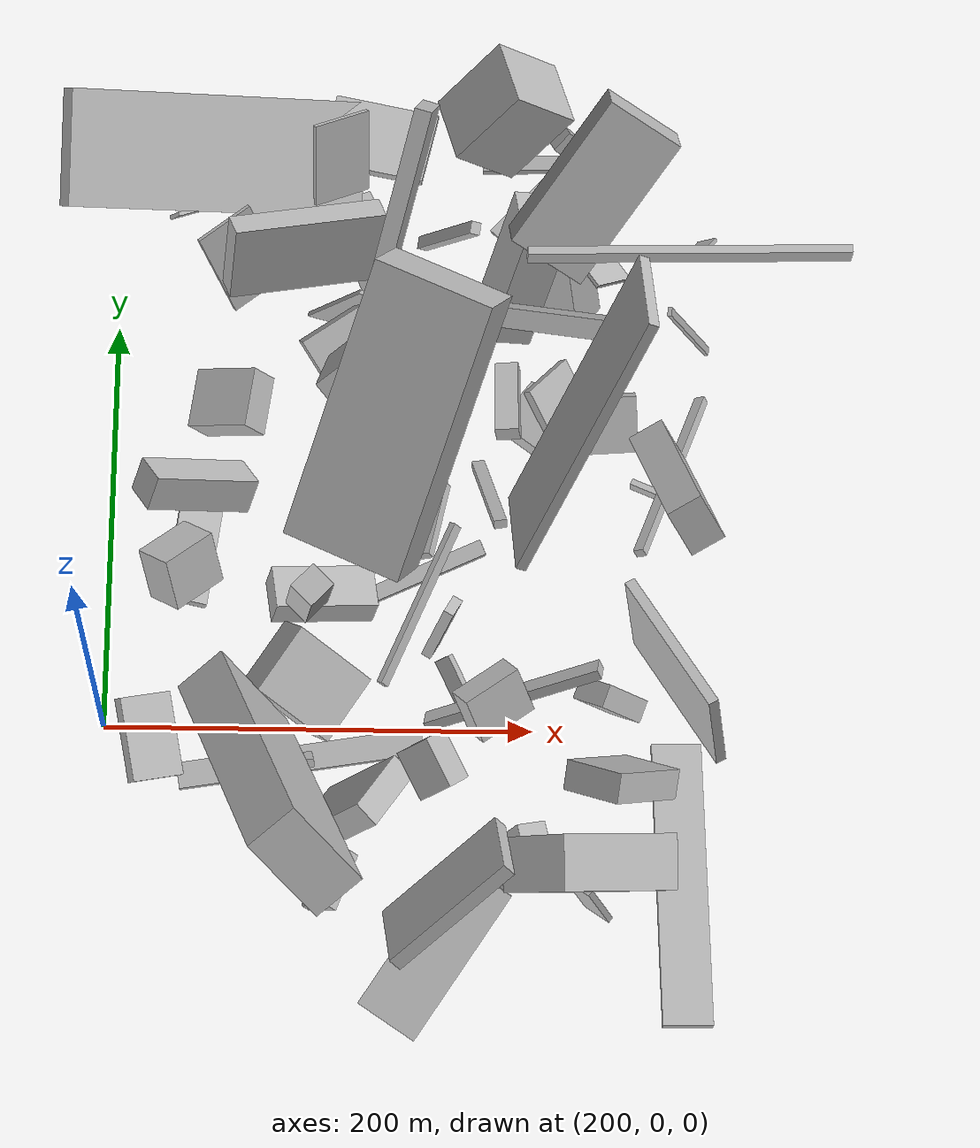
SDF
<sdf version="1.6">
 <world name="default">
  <model name="building_4">
   <static>0</static>
   <pose>390.6471095248768 -58.76286889954505 28.261289857396083 1.7534174453975628 -1.1772123350390233 0.0813670237640898</pose>
   <link name="link">
    <gravity>0</gravity>
    <pose>0 0 10.0 0 0 0</pose>
    <collision name="collision"><geometry><box><size>44 14 20</size></box></geometry></collision>
    <visual name="visual">
     <cast_shadows>0</cast_shadows>
     <geometry><box><size>44 14 20</size></box></geometry>
     <material>
      <script>
       <uri>model://HANNAS_wall/materials/scripts</uri>
       <uri>model://HANNAS_wall/materials/textures</uri>
       <name>vrc/HANNAS_wall</name>
      </script>
     </material>
    </visual>
   </link>
  </model>
  <model name="building_14">
   <static>0</static>
   <pose>361.18956088800326 7.607705224751195 44.17378770220947 0.46122984612862505 0.7898631440260956 0.827923298537248</pose>
   <link name="link">
    <gravity>0</gravity>
    <pose>0 0 4.0 0 0 0</pose>
    <collision name="collision"><geometry><box><size>4 26 8</size></box></geometry></collision>
    <visual name="visual">
     <cast_shadows>0</cast_shadows>
     <geometry><box><size>4 26 8</size></box></geometry>
     <material>
      <script>
       <uri>model://HANNAS_wall/materials/scripts</uri>
       <uri>model://HANNAS_wall/materials/textures</uri>
       <name>vrc/HANNAS_wall</name>
      </script>
     </material>
    </visual>
   </link>
  </model>
  <model name="building_15">
   <static>0</static>
   <pose>394.6074532804525 197.6504539244415 103.86973596358992 -2.7165729200526 1.5254399712984126 -2.6794360454240707</pose>
   <link name="link">
    <gravity>0</gravity>
    <pose>0 0 75.0 0 0 0</pose>
    <collision name="collision"><geometry><box><size>10 4 150</size></box></geometry></collision>
    <visual name="visual">
     <cast_shadows>0</cast_shadows>
     <geometry><box><size>10 4 150</size></box></geometry>
     <material>
      <script>
       <uri>model://HANNAS_wall/materials/scripts</uri>
       <uri>model://HANNAS_wall/materials/textures</uri>
       <name>vrc/HANNAS_wall</name>
      </script>
     </material>
    </visual>
   </link>
  </model>
  <model name="building_19">
   <static>0</static>
   <pose>341.5602806695067 120.80445464012655 82.78740405948585 0.8009391516269025 -0.9096102685809624 -1.7142213834626716</pose>
   <link name="link">
    <gravity>0</gravity>
    <pose>0 0 22.5 0 0 0</pose>
    <collision name="collision"><geometry><box><size>49 31 45</size></box></geometry></collision>
    <visual name="visual">
     <cast_shadows>0</cast_shadows>
     <geometry><box><size>49 31 45</size></box></geometry>
     <material>
      <script>
       <uri>model://HANNAS_wall/materials/scripts</uri>
       <uri>model://HANNAS_wall/materials/textures</uri>
       <name>vrc/HANNAS_wall</name>
      </script>
     </material>
    </visual>
   </link>
  </model>
  <model name="building_20">
   <static>0</static>
   <pose>417.2304267297484 112.18557234560535 122.82527183178273 2.19859053724062 -0.913077147811763 0.9089554446490067</pose>
   <link name="link">
    <gravity>0</gravity>
    <pose>0 0 2.5 0 0 0</pose>
    <collision name="collision"><geometry><box><size>150 50 5</size></box></geometry></collision>
    <visual name="visual">
     <cast_shadows>0</cast_shadows>
     <geometry><box><size>150 50 5</size></box></geometry>
     <material>
      <script>
       <uri>model://HANNAS_wall/materials/scripts</uri>
       <uri>model://HANNAS_wall/materials/textures</uri>
       <name>vrc/HANNAS_wall</name>
      </script>
     </material>
    </visual>
   </link>
  </model>
  <model name="building_22">
   <static>0</static>
   <pose>251.34620506691274 245.95248171115813 105.09104993950115 2.676579680342008 -0.45922151447739257 -2.953209946280549</pose>
   <link name="link">
    <gravity>0</gravity>
    <pose>0 0 5.0 0 0 0</pose>
    <collision name="collision"><geometry><box><size>150 54 10</size></box></geometry></collision>
    <visual name="visual">
     <cast_shadows>0</cast_shadows>
     <geometry><box><size>150 54 10</size></box></geometry>
     <material>
      <script>
       <uri>model://HANNAS_wall/materials/scripts</uri>
       <uri>model://HANNAS_wall/materials/textures</uri>
       <name>vrc/HANNAS_wall</name>
      </script>
     </material>
    </visual>
   </link>
  </model>
  <model name="building_26">
   <static>0</static>
   <pose>264.3776197506206 107.7759199272938 34.483710147613294 0.9307663108238379 -0.488208672427251 -1.0236264390822123</pose>
   <link name="link">
    <gravity>0</gravity>
    <pose>0 0 27.0 0 0 0</pose>
    <collision name="collision"><geometry><box><size>18 17 54</size></box></geometry></collision>
    <visual name="visual">
     <cast_shadows>0</cast_shadows>
     <geometry><box><size>18 17 54</size></box></geometry>
     <material>
      <script>
       <uri>model://HANNAS_wall/materials/scripts</uri>
       <uri>model://HANNAS_wall/materials/textures</uri>
       <name>vrc/HANNAS_wall</name>
      </script>
     </material>
    </visual>
   </link>
  </model>
  <model name="building_28">
   <static>0</static>
   <pose>341.15803810802186 105.51661331929368 143.50354329104098 -0.07487670340606903 -0.6531098428401786 1.1795823281506679</pose>
   <link name="link">
    <gravity>0</gravity>
    <pose>0 0 14.5 0 0 0</pose>
    <collision name="collision"><geometry><box><size>134 57 29</size></box></geometry></collision>
    <visual name="visual">
     <cast_shadows>0</cast_shadows>
     <geometry><box><size>134 57 29</size></box></geometry>
     <material>
      <script>
       <uri>model://HANNAS_wall/materials/scripts</uri>
       <uri>model://HANNAS_wall/materials/textures</uri>
       <name>vrc/HANNAS_wall</name>
      </script>
     </material>
    </visual>
   </link>
  </model>
  <model name="building_29">
   <static>0</static>
   <pose>411.2942130548839 239.27422375140117 30.969162911148302 -2.7449404133757573 -0.3654711604372377 -2.1668315379713925</pose>
   <link name="link">
    <gravity>0</gravity>
    <pose>0 0 25.0 0 0 0</pose>
    <collision name="collision"><geometry><box><size>21 18 50</size></box></geometry></collision>
    <visual name="visual">
     <cast_shadows>0</cast_shadows>
     <geometry><box><size>21 18 50</size></box></geometry>
     <material>
      <script>
       <uri>model://HANNAS_wall/materials/scripts</uri>
       <uri>model://HANNAS_wall/materials/textures</uri>
       <name>vrc/HANNAS_wall</name>
      </script>
     </material>
    </visual>
   </link>
  </model>
  <model name="building_30">
   <static>0</static>
   <pose>359.87840974603824 -81.67283586071687 53.30240212858959 0.7502803925968211 -0.49605957477824936 0.6113311302998181</pose>
   <link name="link">
    <gravity>0</gravity>
    <pose>0 0 19.5 0 0 0</pose>
    <collision name="collision"><geometry><box><size>70 7 39</size></box></geometry></collision>
    <visual name="visual">
     <cast_shadows>0</cast_shadows>
     <geometry><box><size>70 7 39</size></box></geometry>
     <material>
      <script>
       <uri>model://HANNAS_wall/materials/scripts</uri>
       <uri>model://HANNAS_wall/materials/textures</uri>
       <name>vrc/HANNAS_wall</name>
      </script>
     </material>
    </visual>
   </link>
  </model>
  <model name="building_31">
   <static>0</static>
   <pose>309.3869612737192 139.2884420406525 56.555057493158785 1.4427853762859233 -0.4544701253354884 2.2023761404183633</pose>
   <link name="link">
    <gravity>0</gravity>
    <pose>0 0 20.0 0 0 0</pose>
    <collision name="collision"><geometry><box><size>73 14 40</size></box></geometry></collision>
    <visual name="visual">
     <cast_shadows>0</cast_shadows>
     <geometry><box><size>73 14 40</size></box></geometry>
     <material>
      <script>
       <uri>model://HANNAS_wall/materials/scripts</uri>
       <uri>model://HANNAS_wall/materials/textures</uri>
       <name>vrc/HANNAS_wall</name>
      </script>
     </material>
    </visual>
   </link>
  </model>
  <model name="building_32">
   <static>0</static>
   <pose>320.216310687661 209.56693527866082 38.49452775688098 1.8797287416360433 -1.3839018905859348 1.6574840775523225</pose>
   <link name="link">
    <gravity>0</gravity>
    <pose>0 0 7.5 0 0 0</pose>
    <collision name="collision"><geometry><box><size>42 71 15</size></box></geometry></collision>
    <visual name="visual">
     <cast_shadows>0</cast_shadows>
     <geometry><box><size>42 71 15</size></box></geometry>
     <material>
      <script>
       <uri>model://HANNAS_wall/materials/scripts</uri>
       <uri>model://HANNAS_wall/materials/textures</uri>
       <name>vrc/HANNAS_wall</name>
      </script>
     </material>
    </visual>
   </link>
  </model>
  <model name="building_39">
   <static>0</static>
   <pose>299.83355371926655 -30.885032758143225 53.788522552541146 1.5019455801414585 0.6672985578282256 -1.4701699718534331</pose>
   <link name="link">
    <gravity>0</gravity>
    <pose>0 0 2.0 0 0 0</pose>
    <collision name="collision"><geometry><box><size>4 10 4</size></box></geometry></collision>
    <visual name="visual">
     <cast_shadows>0</cast_shadows>
     <geometry><box><size>4 10 4</size></box></geometry>
     <material>
      <script>
       <uri>model://HANNAS_wall/materials/scripts</uri>
       <uri>model://HANNAS_wall/materials/textures</uri>
       <name>vrc/HANNAS_wall</name>
      </script>
     </material>
    </visual>
   </link>
  </model>
  <model name="building_40">
   <static>0</static>
   <pose>266.2120642946768 -26.620576289741024 122.58345999955213 -0.40352274067392807 -0.7231917506955453 2.4971370081185684</pose>
   <link name="link">
    <gravity>0</gravity>
    <pose>0 0 75.0 0 0 0</pose>
    <collision name="collision"><geometry><box><size>47 25 150</size></box></geometry></collision>
    <visual name="visual">
     <cast_shadows>0</cast_shadows>
     <geometry><box><size>47 25 150</size></box></geometry>
     <material>
      <script>
       <uri>model://HANNAS_wall/materials/scripts</uri>
       <uri>model://HANNAS_wall/materials/textures</uri>
       <name>vrc/HANNAS_wall</name>
      </script>
     </material>
    </visual>
   </link>
  </model>
  <model name="building_43">
   <static>0</static>
   <pose>243.7837416370377 105.67003840488064 20.089445007969687 -1.422617059557073 -0.214365604456762 2.9938636087067976</pose>
   <link name="link">
    <gravity>0</gravity>
    <pose>0 0 27.0 0 0 0</pose>
    <collision name="collision"><geometry><box><size>20 4 54</size></box></geometry></collision>
    <visual name="visual">
     <cast_shadows>0</cast_shadows>
     <geometry><box><size>20 4 54</size></box></geometry>
     <material>
      <script>
       <uri>model://HANNAS_wall/materials/scripts</uri>
       <uri>model://HANNAS_wall/materials/textures</uri>
       <name>vrc/HANNAS_wall</name>
      </script>
     </material>
    </visual>
   </link>
  </model>
  <model name="building_46">
   <static>0</static>
   <pose>252.51493734272725 147.72913208864983 46.98714959127847 3.026870483716338 0.548085571897788 2.9336742100093134</pose>
   <link name="link">
    <gravity>0</gravity>
    <pose>0 0 8.0 0 0 0</pose>
    <collision name="collision"><geometry><box><size>33 28 16</size></box></geometry></collision>
    <visual name="visual">
     <cast_shadows>0</cast_shadows>
     <geometry><box><size>33 28 16</size></box></geometry>
     <material>
      <script>
       <uri>model://HANNAS_wall/materials/scripts</uri>
       <uri>model://HANNAS_wall/materials/textures</uri>
       <name>vrc/HANNAS_wall</name>
      </script>
     </material>
    </visual>
   </link>
  </model>
  <model name="building_47">
   <static>0</static>
   <pose>449.4952539522483 -85.35931132954619 80.66650673376047 1.2352251398997536 0.26587010401900946 -1.5429356963920489</pose>
   <link name="link">
    <gravity>0</gravity>
    <pose>0 0 26.5 0 0 0</pose>
    <collision name="collision"><geometry><box><size>25 78 53</size></box></geometry></collision>
    <visual name="visual">
     <cast_shadows>0</cast_shadows>
     <geometry><box><size>25 78 53</size></box></geometry>
     <material>
      <script>
       <uri>model://HANNAS_wall/materials/scripts</uri>
       <uri>model://HANNAS_wall/materials/textures</uri>
       <name>vrc/HANNAS_wall</name>
      </script>
     </material>
    </visual>
   </link>
  </model>
  <model name="building_53">
   <static>0</static>
   <pose>293.71516765610545 -26.201581675970942 18.178871703812508 -0.0970447003189313 1.362831161298063 1.6312795715733797</pose>
   <link name="link">
    <gravity>0</gravity>
    <pose>0 0 6.0 0 0 0</pose>
    <collision name="collision"><geometry><box><size>8 114 12</size></box></geometry></collision>
    <visual name="visual">
     <cast_shadows>0</cast_shadows>
     <geometry><box><size>8 114 12</size></box></geometry>
     <material>
      <script>
       <uri>model://HANNAS_wall/materials/scripts</uri>
       <uri>model://HANNAS_wall/materials/textures</uri>
       <name>vrc/HANNAS_wall</name>
      </script>
     </material>
    </visual>
   </link>
  </model>
  <model name="building_56">
   <static>0</static>
   <pose>466.080982311219 -11.0124468547776 17.416751060489002 0.6770837178189546 -1.4805661637859153 0.9278279971416242</pose>
   <link name="link">
    <gravity>0</gravity>
    <pose>0 0 68.0 0 0 0</pose>
    <collision name="collision"><geometry><box><size>4 23 136</size></box></geometry></collision>
    <visual name="visual">
     <cast_shadows>0</cast_shadows>
     <geometry><box><size>4 23 136</size></box></geometry>
     <material>
      <script>
       <uri>model://HANNAS_wall/materials/scripts</uri>
       <uri>model://HANNAS_wall/materials/textures</uri>
       <name>vrc/HANNAS_wall</name>
      </script>
     </material>
    </visual>
   </link>
  </model>
  <model name="building_57">
   <static>0</static>
   <pose>351.3154415649627 -14.415830370688315 59.78181271028895 1.0614062826452326 0.6457430651789743 1.438560487941505</pose>
   <link name="link">
    <gravity>0</gravity>
    <pose>0 0 43.0 0 0 0</pose>
    <collision name="collision"><geometry><box><size>9 5 86</size></box></geometry></collision>
    <visual name="visual">
     <cast_shadows>0</cast_shadows>
     <geometry><box><size>9 5 86</size></box></geometry>
     <material>
      <script>
       <uri>model://HANNAS_wall/materials/scripts</uri>
       <uri>model://HANNAS_wall/materials/textures</uri>
       <name>vrc/HANNAS_wall</name>
      </script>
     </material>
    </visual>
   </link>
  </model>
  <model name="building_61">
   <static>0</static>
   <pose>419.15911630367566 286.1081701197355 20.556922793612358 2.5117439213357424 -0.7193172446143085 2.741863605860371</pose>
   <link name="link">
    <gravity>0</gravity>
    <pose>0 0 3.5 0 0 0</pose>
    <collision name="collision"><geometry><box><size>22 11 7</size></box></geometry></collision>
    <visual name="visual">
     <cast_shadows>0</cast_shadows>
     <geometry><box><size>22 11 7</size></box></geometry>
     <material>
      <script>
       <uri>model://HANNAS_wall/materials/scripts</uri>
       <uri>model://HANNAS_wall/materials/textures</uri>
       <name>vrc/HANNAS_wall</name>
      </script>
     </material>
    </visual>
   </link>
  </model>
  <model name="building_64">
   <static>0</static>
   <pose>296.1562870692844 34.882464228286366 81.46290799018074 -0.20647064686183195 0.10812669558459781 -2.3572381698186193</pose>
   <link name="link">
    <gravity>0</gravity>
    <pose>0 0 35.5 0 0 0</pose>
    <collision name="collision"><geometry><box><size>14 13 71</size></box></geometry></collision>
    <visual name="visual">
     <cast_shadows>0</cast_shadows>
     <geometry><box><size>14 13 71</size></box></geometry>
     <material>
      <script>
       <uri>model://HANNAS_wall/materials/scripts</uri>
       <uri>model://HANNAS_wall/materials/textures</uri>
       <name>vrc/HANNAS_wall</name>
      </script>
     </material>
    </visual>
   </link>
  </model>
  <model name="building_65">
   <static>0</static>
   <pose>383.165784822168 218.5960287399756 39.299464366441384 1.862288440527536 0.3409045131240856 1.7238878197366412</pose>
   <link name="link">
    <gravity>0</gravity>
    <pose>0 0 10.0 0 0 0</pose>
    <collision name="collision"><geometry><box><size>34 68 20</size></box></geometry></collision>
    <visual name="visual">
     <cast_shadows>0</cast_shadows>
     <geometry><box><size>34 68 20</size></box></geometry>
     <material>
      <script>
       <uri>model://HANNAS_wall/materials/scripts</uri>
       <uri>model://HANNAS_wall/materials/textures</uri>
       <name>vrc/HANNAS_wall</name>
      </script>
     </material>
    </visual>
   </link>
  </model>
  <model name="building_72">
   <static>0</static>
   <pose>419.63972519977494 121.41795323050007 61.14255570431288 -0.6971568721996935 -0.7799330842842597 -0.12464725091624251</pose>
   <link name="link">
    <gravity>0</gravity>
    <pose>0 0 18.0 0 0 0</pose>
    <collision name="collision"><geometry><box><size>4 31 36</size></box></geometry></collision>
    <visual name="visual">
     <cast_shadows>0</cast_shadows>
     <geometry><box><size>4 31 36</size></box></geometry>
     <material>
      <script>
       <uri>model://HANNAS_wall/materials/scripts</uri>
       <uri>model://HANNAS_wall/materials/textures</uri>
       <name>vrc/HANNAS_wall</name>
      </script>
     </material>
    </visual>
   </link>
  </model>
  <model name="building_74">
   <static>0</static>
   <pose>299.6488763867909 6.493554490664508 48.14380223306909 2.965081880532035 -0.5732154357269711 2.6413399370480817</pose>
   <link name="link">
    <gravity>0</gravity>
    <pose>0 0 11.0 0 0 0</pose>
    <collision name="collision"><geometry><box><size>43 35 22</size></box></geometry></collision>
    <visual name="visual">
     <cast_shadows>0</cast_shadows>
     <geometry><box><size>43 35 22</size></box></geometry>
     <material>
      <script>
       <uri>model://HANNAS_wall/materials/scripts</uri>
       <uri>model://HANNAS_wall/materials/textures</uri>
       <name>vrc/HANNAS_wall</name>
      </script>
     </material>
    </visual>
   </link>
  </model>
  <model name="building_78">
   <static>0</static>
   <pose>354.9856019023612 39.91729515002475 21.80333170738035 -1.8783682489596922 0.13487938239145947 -0.5122316312265822</pose>
   <link name="link">
    <gravity>0</gravity>
    <pose>0 0 5.0 0 0 0</pose>
    <collision name="collision"><geometry><box><size>5 41 10</size></box></geometry></collision>
    <visual name="visual">
     <cast_shadows>0</cast_shadows>
     <geometry><box><size>5 41 10</size></box></geometry>
     <material>
      <script>
       <uri>model://HANNAS_wall/materials/scripts</uri>
       <uri>model://HANNAS_wall/materials/textures</uri>
       <name>vrc/HANNAS_wall</name>
      </script>
     </material>
    </visual>
   </link>
  </model>
  <model name="building_86">
   <static>0</static>
   <pose>270.34456744603324 289.48138878590316 42.45984993041015 -3.003798507754868 -0.4782156676940951 -0.22933406686847532</pose>
   <link name="link">
    <gravity>0</gravity>
    <pose>0 0 2.0 0 0 0</pose>
    <collision name="collision"><geometry><box><size>46 6 4</size></box></geometry></collision>
    <visual name="visual">
     <cast_shadows>0</cast_shadows>
     <geometry><box><size>46 6 4</size></box></geometry>
     <material>
      <script>
       <uri>model://HANNAS_wall/materials/scripts</uri>
       <uri>model://HANNAS_wall/materials/textures</uri>
       <name>vrc/HANNAS_wall</name>
      </script>
     </material>
    </visual>
   </link>
  </model>
  <model name="building_89">
   <static>0</static>
   <pose>375.4242602680997 97.27509118673899 55.57351741067173 -1.6282430786400173 -0.7991204059063065 -1.3529036069585763</pose>
   <link name="link">
    <gravity>0</gravity>
    <pose>0 0 3.0 0 0 0</pose>
    <collision name="collision"><geometry><box><size>70 4 6</size></box></geometry></collision>
    <visual name="visual">
     <cast_shadows>0</cast_shadows>
     <geometry><box><size>70 4 6</size></box></geometry>
     <material>
      <script>
       <uri>model://HANNAS_wall/materials/scripts</uri>
       <uri>model://HANNAS_wall/materials/textures</uri>
       <name>vrc/HANNAS_wall</name>
      </script>
     </material>
    </visual>
   </link>
  </model>
  <model name="building_90">
   <static>0</static>
   <pose>461.1308793387612 16.780584815194395 87.00382986457817 3.1103981974904427 -0.29546422201650724 -1.0534793129691866</pose>
   <link name="link">
    <gravity>0</gravity>
    <pose>0 0 24.5 0 0 0</pose>
    <collision name="collision"><geometry><box><size>78 5 49</size></box></geometry></collision>
    <visual name="visual">
     <cast_shadows>0</cast_shadows>
     <geometry><box><size>78 5 49</size></box></geometry>
     <material>
      <script>
       <uri>model://HANNAS_wall/materials/scripts</uri>
       <uri>model://HANNAS_wall/materials/textures</uri>
       <name>vrc/HANNAS_wall</name>
      </script>
     </material>
    </visual>
   </link>
  </model>
  <model name="building_91">
   <static>0</static>
   <pose>289.7684264505822 205.39014611185218 99.63156821799679 1.131006920671586 0.23978926816496465 0.2500183261003386</pose>
   <link name="link">
    <gravity>0</gravity>
    <pose>0 0 6.0 0 0 0</pose>
    <collision name="collision"><geometry><box><size>72 38 12</size></box></geometry></collision>
    <visual name="visual">
     <cast_shadows>0</cast_shadows>
     <geometry><box><size>72 38 12</size></box></geometry>
     <material>
      <script>
       <uri>model://HANNAS_wall/materials/scripts</uri>
       <uri>model://HANNAS_wall/materials/textures</uri>
       <name>vrc/HANNAS_wall</name>
      </script>
     </material>
    </visual>
   </link>
  </model>
  <model name="building_93">
   <static>0</static>
   <pose>348.77600227365883 258.17427337622377 84.33444049928418 -1.5603832631000918 -1.425334606202399 1.3564088697944445</pose>
   <link name="link">
    <gravity>0</gravity>
    <pose>0 0 24.5 0 0 0</pose>
    <collision name="collision"><geometry><box><size>4 37 49</size></box></geometry></collision>
    <visual name="visual">
     <cast_shadows>0</cast_shadows>
     <geometry><box><size>4 37 49</size></box></geometry>
     <material>
      <script>
       <uri>model://HANNAS_wall/materials/scripts</uri>
       <uri>model://HANNAS_wall/materials/textures</uri>
       <name>vrc/HANNAS_wall</name>
      </script>
     </material>
    </visual>
   </link>
  </model>
  <model name="building_94">
   <static>0</static>
   <pose>387.0721000200474 181.67368923720835 55.990126647578016 -0.38727651887001696 -0.7000427543939831 -0.478377717906864</pose>
   <link name="link">
    <gravity>0</gravity>
    <pose>0 0 6.0 0 0 0</pose>
    <collision name="collision"><geometry><box><size>150 4 12</size></box></geometry></collision>
    <visual name="visual">
     <cast_shadows>0</cast_shadows>
     <geometry><box><size>150 4 12</size></box></geometry>
     <material>
      <script>
       <uri>model://HANNAS_wall/materials/scripts</uri>
       <uri>model://HANNAS_wall/materials/textures</uri>
       <name>vrc/HANNAS_wall</name>
      </script>
     </material>
    </visual>
   </link>
  </model>
  <model name="building_96">
   <static>0</static>
   <pose>367.5419646807274 160.74877851130557 104.98113114477466 -0.6983409817799625 -1.0609533317489075 -1.47987722861233</pose>
   <link name="link">
    <gravity>0</gravity>
    <pose>0 0 4.0 0 0 0</pose>
    <collision name="collision"><geometry><box><size>7 10 8</size></box></geometry></collision>
    <visual name="visual">
     <cast_shadows>0</cast_shadows>
     <geometry><box><size>7 10 8</size></box></geometry>
     <material>
      <script>
       <uri>model://HANNAS_wall/materials/scripts</uri>
       <uri>model://HANNAS_wall/materials/textures</uri>
       <name>vrc/HANNAS_wall</name>
      </script>
     </material>
    </visual>
   </link>
  </model>
  <model name="building_100">
   <static>0</static>
   <pose>476.94909220841674 148.4307329724138 48.313028046795196 -0.9221133534489352 -0.8407977688852922 2.3090640927256083</pose>
   <link name="link">
    <gravity>0</gravity>
    <pose>0 0 52.5 0 0 0</pose>
    <collision name="collision"><geometry><box><size>4 5 105</size></box></geometry></collision>
    <visual name="visual">
     <cast_shadows>0</cast_shadows>
     <geometry><box><size>4 5 105</size></box></geometry>
     <material>
      <script>
       <uri>model://HANNAS_wall/materials/scripts</uri>
       <uri>model://HANNAS_wall/materials/textures</uri>
       <name>vrc/HANNAS_wall</name>
      </script>
     </material>
    </visual>
   </link>
  </model>
  <model name="building_107">
   <static>0</static>
   <pose>469.77111819077135 84.00903260766148 117.50709899811775 -1.8764727426513028 0.6506029738144425 1.8647949924458689</pose>
   <link name="link">
    <gravity>0</gravity>
    <pose>0 0 8.5 0 0 0</pose>
    <collision name="collision"><geometry><box><size>68 26 17</size></box></geometry></collision>
    <visual name="visual">
     <cast_shadows>0</cast_shadows>
     <geometry><box><size>68 26 17</size></box></geometry>
     <material>
      <script>
       <uri>model://HANNAS_wall/materials/scripts</uri>
       <uri>model://HANNAS_wall/materials/textures</uri>
       <name>vrc/HANNAS_wall</name>
      </script>
     </material>
    </visual>
   </link>
  </model>
  <model name="building_108">
   <static>0</static>
   <pose>431.68338913862823 -89.29361655223477 20.084742061020357 1.9437490715706867 0.07812470369383478 -2.226130863437369</pose>
   <link name="link">
    <gravity>0</gravity>
    <pose>0 0 7.5 0 0 0</pose>
    <collision name="collision"><geometry><box><size>3 30 15</size></box></geometry></collision>
    <visual name="visual">
     <cast_shadows>0</cast_shadows>
     <geometry><box><size>3 30 15</size></box></geometry>
     <material>
      <script>
       <uri>model://HANNAS_wall/materials/scripts</uri>
       <uri>model://HANNAS_wall/materials/textures</uri>
       <name>vrc/HANNAS_wall</name>
      </script>
     </material>
    </visual>
   </link>
  </model>
  <model name="building_109">
   <static>0</static>
   <pose>409.56388170743 153.62858715721177 28.73206180460909 -2.1258589328352926 -1.3365481259780116 3.0033915955804993</pose>
   <link name="link">
    <gravity>0</gravity>
    <pose>0 0 12.5 0 0 0</pose>
    <collision name="collision"><geometry><box><size>20 25 25</size></box></geometry></collision>
    <visual name="visual">
     <cast_shadows>0</cast_shadows>
     <geometry><box><size>20 25 25</size></box></geometry>
     <material>
      <script>
       <uri>model://HANNAS_wall/materials/scripts</uri>
       <uri>model://HANNAS_wall/materials/textures</uri>
       <name>vrc/HANNAS_wall</name>
      </script>
     </material>
    </visual>
   </link>
  </model>
  <model name="building_110">
   <static>0</static>
   <pose>426.6762288953573 8.70337905355876 36.43999983384285 -2.826494604426154 -0.62853739921342 -0.5431416914819303</pose>
   <link name="link">
    <gravity>0</gravity>
    <pose>0 0 14.0 0 0 0</pose>
    <collision name="collision"><geometry><box><size>19 11 28</size></box></geometry></collision>
    <visual name="visual">
     <cast_shadows>0</cast_shadows>
     <geometry><box><size>19 11 28</size></box></geometry>
     <material>
      <script>
       <uri>model://HANNAS_wall/materials/scripts</uri>
       <uri>model://HANNAS_wall/materials/textures</uri>
       <name>vrc/HANNAS_wall</name>
      </script>
     </material>
    </visual>
   </link>
  </model>
  <model name="building_112">
   <static>0</static>
   <pose>428.2637052603331 -31.0865001264672 39.94376289669487 -0.7095952861061164 -0.8146866820283352 -2.7226280084397816</pose>
   <link name="link">
    <gravity>0</gravity>
    <pose>0 0 15.5 0 0 0</pose>
    <collision name="collision"><geometry><box><size>44 14 31</size></box></geometry></collision>
    <visual name="visual">
     <cast_shadows>0</cast_shadows>
     <geometry><box><size>44 14 31</size></box></geometry>
     <material>
      <script>
       <uri>model://HANNAS_wall/materials/scripts</uri>
       <uri>model://HANNAS_wall/materials/textures</uri>
       <name>vrc/HANNAS_wall</name>
      </script>
     </material>
    </visual>
   </link>
  </model>
  <model name="building_114">
   <static>0</static>
   <pose>248.68564263523433 28.68915799223071 139.4885035816297 -2.6207476276318253 -0.899743552147551 1.8817297696364779</pose>
   <link name="link">
    <gravity>0</gravity>
    <pose>0 0 9.5 0 0 0</pose>
    <collision name="collision"><geometry><box><size>25 27 19</size></box></geometry></collision>
    <visual name="visual">
     <cast_shadows>0</cast_shadows>
     <geometry><box><size>25 27 19</size></box></geometry>
     <material>
      <script>
       <uri>model://HANNAS_wall/materials/scripts</uri>
       <uri>model://HANNAS_wall/materials/textures</uri>
       <name>vrc/HANNAS_wall</name>
      </script>
     </material>
    </visual>
   </link>
  </model>
  <model name="building_115">
   <static>0</static>
   <pose>424.38234243570787 235.58772078317452 103.74322192173052 -0.5177941953402456 0.5658141055349868 -2.2946706866746136</pose>
   <link name="link">
    <gravity>0</gravity>
    <pose>0 0 10.0 0 0 0</pose>
    <collision name="collision"><geometry><box><size>80 39 20</size></box></geometry></collision>
    <visual name="visual">
     <cast_shadows>0</cast_shadows>
     <geometry><box><size>80 39 20</size></box></geometry>
     <material>
      <script>
       <uri>model://HANNAS_wall/materials/scripts</uri>
       <uri>model://HANNAS_wall/materials/textures</uri>
       <name>vrc/HANNAS_wall</name>
      </script>
     </material>
    </visual>
   </link>
  </model>
  <model name="building_116">
   <static>0</static>
   <pose>303.3384820014762 -95.53437918490046 34.3625083985284 -1.6105727846386488 0.7083732064464141 -0.37360884926562676</pose>
   <link name="link">
    <gravity>0</gravity>
    <pose>0 0 14.0 0 0 0</pose>
    <collision name="collision"><geometry><box><size>5 20 28</size></box></geometry></collision>
    <visual name="visual">
     <cast_shadows>0</cast_shadows>
     <geometry><box><size>5 20 28</size></box></geometry>
     <material>
      <script>
       <uri>model://HANNAS_wall/materials/scripts</uri>
       <uri>model://HANNAS_wall/materials/textures</uri>
       <name>vrc/HANNAS_wall</name>
      </script>
     </material>
    </visual>
   </link>
  </model>
  <model name="building_118">
   <static>0</static>
   <pose>407.0999625976077 266.07637522785353 49.98627123956326 0.13654063547518744 -0.6830561799168902 -1.681010957187087</pose>
   <link name="link">
    <gravity>0</gravity>
    <pose>0 0 1.0 0 0 0</pose>
    <collision name="collision"><geometry><box><size>15 66 2</size></box></geometry></collision>
    <visual name="visual">
     <cast_shadows>0</cast_shadows>
     <geometry><box><size>15 66 2</size></box></geometry>
     <material>
      <script>
       <uri>model://HANNAS_wall/materials/scripts</uri>
       <uri>model://HANNAS_wall/materials/textures</uri>
       <name>vrc/HANNAS_wall</name>
      </script>
     </material>
    </visual>
   </link>
  </model>
  <model name="building_120">
   <static>0</static>
   <pose>353.6970099053841 115.58722141189482 17.522622776403296 1.1443087681542041 0.9674497496550448 -0.551378534227175</pose>
   <link name="link">
    <gravity>0</gravity>
    <pose>0 0 20.5 0 0 0</pose>
    <collision name="collision"><geometry><box><size>4 13 41</size></box></geometry></collision>
    <visual name="visual">
     <cast_shadows>0</cast_shadows>
     <geometry><box><size>4 13 41</size></box></geometry>
     <material>
      <script>
       <uri>model://HANNAS_wall/materials/scripts</uri>
       <uri>model://HANNAS_wall/materials/textures</uri>
       <name>vrc/HANNAS_wall</name>
      </script>
     </material>
    </visual>
   </link>
  </model>
  <model name="building_124">
   <static>0</static>
   <pose>300.15944084787446 62.971921259314556 39.83603592509424 -0.9783280853237978 1.2842743137593355 -2.4168639285591653</pose>
   <link name="link">
    <gravity>0</gravity>
    <pose>0 0 10.5 0 0 0</pose>
    <collision name="collision"><geometry><box><size>15 48 21</size></box></geometry></collision>
    <visual name="visual">
     <cast_shadows>0</cast_shadows>
     <geometry><box><size>15 48 21</size></box></geometry>
     <material>
      <script>
       <uri>model://HANNAS_wall/materials/scripts</uri>
       <uri>model://HANNAS_wall/materials/textures</uri>
       <name>vrc/HANNAS_wall</name>
      </script>
     </material>
    </visual>
   </link>
  </model>
  <model name="building_131">
   <static>0</static>
   <pose>360.00373847076787 235.65370885737454 34.73318366507006 1.1147747704798296 0.2031130981558662 -1.7173359063216036</pose>
   <link name="link">
    <gravity>0</gravity>
    <pose>0 0 2.5 0 0 0</pose>
    <collision name="collision"><geometry><box><size>6 62 5</size></box></geometry></collision>
    <visual name="visual">
     <cast_shadows>0</cast_shadows>
     <geometry><box><size>6 62 5</size></box></geometry>
     <material>
      <script>
       <uri>model://HANNAS_wall/materials/scripts</uri>
       <uri>model://HANNAS_wall/materials/textures</uri>
       <name>vrc/HANNAS_wall</name>
      </script>
     </material>
    </visual>
   </link>
  </model>
  <model name="building_132">
   <static>0</static>
   <pose>304.59639169716615 188.85419522565044 63.86355500234915 1.9448422741347822 -0.18359141109480503 1.3858380608953238</pose>
   <link name="link">
    <gravity>0</gravity>
    <pose>0 0 16.5 0 0 0</pose>
    <collision name="collision"><geometry><box><size>2 80 33</size></box></geometry></collision>
    <visual name="visual">
     <cast_shadows>0</cast_shadows>
     <geometry><box><size>2 80 33</size></box></geometry>
     <material>
      <script>
       <uri>model://HANNAS_wall/materials/scripts</uri>
       <uri>model://HANNAS_wall/materials/textures</uri>
       <name>vrc/HANNAS_wall</name>
      </script>
     </material>
    </visual>
   </link>
  </model>
  <model name="building_142">
   <static>0</static>
   <pose>331.57991459988074 -9.69467530275368 99.90577002860206 1.395180051403436 -0.9595195817907924 2.8758363731069205</pose>
   <link name="link">
    <gravity>0</gravity>
    <pose>0 0 40.0 0 0 0</pose>
    <collision name="collision"><geometry><box><size>5 3 80</size></box></geometry></collision>
    <visual name="visual">
     <cast_shadows>0</cast_shadows>
     <geometry><box><size>5 3 80</size></box></geometry>
     <material>
      <script>
       <uri>model://HANNAS_wall/materials/scripts</uri>
       <uri>model://HANNAS_wall/materials/textures</uri>
       <name>vrc/HANNAS_wall</name>
      </script>
     </material>
    </visual>
   </link>
  </model>
  <model name="building_145">
   <static>0</static>
   <pose>315.7022757874772 55.28226886341323 20.689440426691256 -1.3801035398217834 -0.11273717096730172 -1.2118743972105934</pose>
   <link name="link">
    <gravity>0</gravity>
    <pose>0 0 33.0 0 0 0</pose>
    <collision name="collision"><geometry><box><size>8 2 66</size></box></geometry></collision>
    <visual name="visual">
     <cast_shadows>0</cast_shadows>
     <geometry><box><size>8 2 66</size></box></geometry>
     <material>
      <script>
       <uri>model://HANNAS_wall/materials/scripts</uri>
       <uri>model://HANNAS_wall/materials/textures</uri>
       <name>vrc/HANNAS_wall</name>
      </script>
     </material>
    </visual>
   </link>
  </model>
  <model name="building_146">
   <static>0</static>
   <pose>308.350954847077 230.42455608039296 137.91969082007 0.9971099332230078 0.3702140001993319 0.5118067202371348</pose>
   <link name="link">
    <gravity>0</gravity>
    <pose>0 0 1.0 0 0 0</pose>
    <collision name="collision"><geometry><box><size>29 40 2</size></box></geometry></collision>
    <visual name="visual">
     <cast_shadows>0</cast_shadows>
     <geometry><box><size>29 40 2</size></box></geometry>
     <material>
      <script>
       <uri>model://HANNAS_wall/materials/scripts</uri>
       <uri>model://HANNAS_wall/materials/textures</uri>
       <name>vrc/HANNAS_wall</name>
      </script>
     </material>
    </visual>
   </link>
  </model>
  <model name="building_147">
   <static>0</static>
   <pose>379.1035158390558 255.35108000768264 164.42216897255202 -1.234472970617504 -0.7656723262864029 -3.0979454048485953</pose>
   <link name="link">
    <gravity>0</gravity>
    <pose>0 0 16.5 0 0 0</pose>
    <collision name="collision"><geometry><box><size>35 43 33</size></box></geometry></collision>
    <visual name="visual">
     <cast_shadows>0</cast_shadows>
     <geometry><box><size>35 43 33</size></box></geometry>
     <material>
      <script>
       <uri>model://HANNAS_wall/materials/scripts</uri>
       <uri>model://HANNAS_wall/materials/textures</uri>
       <name>vrc/HANNAS_wall</name>
      </script>
     </material>
    </visual>
   </link>
  </model>
  <model name="building_153">
   <static>0</static>
   <pose>249.98474309189683 198.75695938238982 71.65482678590018 1.5284033038951648 -0.9862719175940731 2.2669515005494083</pose>
   <link name="link">
    <gravity>0</gravity>
    <pose>0 0 14.5 0 0 0</pose>
    <collision name="collision"><geometry><box><size>45 2 29</size></box></geometry></collision>
    <visual name="visual">
     <cast_shadows>0</cast_shadows>
     <geometry><box><size>45 2 29</size></box></geometry>
     <material>
      <script>
       <uri>model://HANNAS_wall/materials/scripts</uri>
       <uri>model://HANNAS_wall/materials/textures</uri>
       <name>vrc/HANNAS_wall</name>
      </script>
     </material>
    </visual>
   </link>
  </model>
  <model name="building_157">
   <static>0</static>
   <pose>356.0667932589429 -109.23139025005929 15.322947817825728 2.8325329583005843 -0.14405956675039616 2.5741328283054994</pose>
   <link name="link">
    <gravity>0</gravity>
    <pose>0 0 1.0 0 0 0</pose>
    <collision name="collision"><geometry><box><size>31 80 2</size></box></geometry></collision>
    <visual name="visual">
     <cast_shadows>0</cast_shadows>
     <geometry><box><size>31 80 2</size></box></geometry>
     <material>
      <script>
       <uri>model://HANNAS_wall/materials/scripts</uri>
       <uri>model://HANNAS_wall/materials/textures</uri>
       <name>vrc/HANNAS_wall</name>
      </script>
     </material>
    </visual>
   </link>
  </model>
  <model name="building_162">
   <static>0</static>
   <pose>476.0940323308207 213.2146275300668 74.53023211183859 0.9448544511778946 0.4259412026100061 -3.072086597256457</pose>
   <link name="link">
    <gravity>0</gravity>
    <pose>0 0 1.0 0 0 0</pose>
    <collision name="collision"><geometry><box><size>9 24 2</size></box></geometry></collision>
    <visual name="visual">
     <cast_shadows>0</cast_shadows>
     <geometry><box><size>9 24 2</size></box></geometry>
     <material>
      <script>
       <uri>model://HANNAS_wall/materials/scripts</uri>
       <uri>model://HANNAS_wall/materials/textures</uri>
       <name>vrc/HANNAS_wall</name>
      </script>
     </material>
    </visual>
   </link>
  </model>
  <model name="building_170">
   <static>0</static>
   <pose>391.69640312978066 133.85794104915158 82.69074184392173 -2.308379747766479 -1.376478322061682 2.3287495833534444</pose>
   <link name="link">
    <gravity>0</gravity>
    <pose>0 0 5.5 0 0 0</pose>
    <collision name="collision"><geometry><box><size>10 35 11</size></box></geometry></collision>
    <visual name="visual">
     <cast_shadows>0</cast_shadows>
     <geometry><box><size>10 35 11</size></box></geometry>
     <material>
      <script>
       <uri>model://HANNAS_wall/materials/scripts</uri>
       <uri>model://HANNAS_wall/materials/textures</uri>
       <name>vrc/HANNAS_wall</name>
      </script>
     </material>
    </visual>
   </link>
  </model>
  <model name="building_171">
   <static>0</static>
   <pose>238.8772444349704 255.80371448091023 16.707261399825313 0.952343941303937 0.9642619536970154 2.965371047432962</pose>
   <link name="link">
    <gravity>0</gravity>
    <pose>0 0 1.0 0 0 0</pose>
    <collision name="collision"><geometry><box><size>8 33 2</size></box></geometry></collision>
    <visual name="visual">
     <cast_shadows>0</cast_shadows>
     <geometry><box><size>8 33 2</size></box></geometry>
     <material>
      <script>
       <uri>model://HANNAS_wall/materials/scripts</uri>
       <uri>model://HANNAS_wall/materials/textures</uri>
       <name>vrc/HANNAS_wall</name>
      </script>
     </material>
    </visual>
   </link>
  </model>
  <model name="building_172">
   <static>0</static>
   <pose>237.42934861346055 -25.122953485596625 71.90432175503592 -1.1106683661875287 -0.27441188554160933 1.7578672697071076</pose>
   <link name="link">
    <gravity>0</gravity>
    <pose>0 0 12.5 0 0 0</pose>
    <collision name="collision"><geometry><box><size>38 6 25</size></box></geometry></collision>
    <visual name="visual">
     <cast_shadows>0</cast_shadows>
     <geometry><box><size>38 6 25</size></box></geometry>
     <material>
      <script>
       <uri>model://HANNAS_wall/materials/scripts</uri>
       <uri>model://HANNAS_wall/materials/textures</uri>
       <name>vrc/HANNAS_wall</name>
      </script>
     </material>
    </visual>
   </link>
  </model>
  <model name="building_173">
   <static>0</static>
   <pose>455.8396038239585 112.3658505968468 16.759820094409008 0.04586406953278936 0.02650056080778882 2.7316676016959964</pose>
   <link name="link">
    <gravity>0</gravity>
    <pose>0 0 3.0 0 0 0</pose>
    <collision name="collision"><geometry><box><size>23 3 6</size></box></geometry></collision>
    <visual name="visual">
     <cast_shadows>0</cast_shadows>
     <geometry><box><size>23 3 6</size></box></geometry>
     <material>
      <script>
       <uri>model://HANNAS_wall/materials/scripts</uri>
       <uri>model://HANNAS_wall/materials/textures</uri>
       <name>vrc/HANNAS_wall</name>
      </script>
     </material>
    </visual>
   </link>
  </model>
  <model name="building_180">
   <static>0</static>
   <pose>328.93228317148845 169.69645837996475 144.1418493332604 -0.029195964444325002 -0.9498158544968077 -1.841312385150544</pose>
   <link name="link">
    <gravity>0</gravity>
    <pose>0 0 40.0 0 0 0</pose>
    <collision name="collision"><geometry><box><size>22 8 80</size></box></geometry></collision>
    <visual name="visual">
     <cast_shadows>0</cast_shadows>
     <geometry><box><size>22 8 80</size></box></geometry>
     <material>
      <script>
       <uri>model://HANNAS_wall/materials/scripts</uri>
       <uri>model://HANNAS_wall/materials/textures</uri>
       <name>vrc/HANNAS_wall</name>
      </script>
     </material>
    </visual>
   </link>
  </model>
  <model name="building_181">
   <static>0</static>
   <pose>430.8368174974368 205.9886596848659 63.34065464726126 -0.11014270036486162 0.5852937657860717 0.5274006505887432</pose>
   <link name="link">
    <gravity>0</gravity>
    <pose>0 0 1.0 0 0 0</pose>
    <collision name="collision"><geometry><box><size>21 15 2</size></box></geometry></collision>
    <visual name="visual">
     <cast_shadows>0</cast_shadows>
     <geometry><box><size>21 15 2</size></box></geometry>
     <material>
      <script>
       <uri>model://HANNAS_wall/materials/scripts</uri>
       <uri>model://HANNAS_wall/materials/textures</uri>
       <name>vrc/HANNAS_wall</name>
      </script>
     </material>
    </visual>
   </link>
  </model>
  <model name="building_182">
   <static>0</static>
   <pose>385.07350230211574 -27.79946812452293 105.9508000535813 0.6969334375721288 -0.07098860996619062 -2.507231969039878</pose>
   <link name="link">
    <gravity>0</gravity>
    <pose>0 0 11.5 0 0 0</pose>
    <collision name="collision"><geometry><box><size>28 13 23</size></box></geometry></collision>
    <visual name="visual">
     <cast_shadows>0</cast_shadows>
     <geometry><box><size>28 13 23</size></box></geometry>
     <material>
      <script>
       <uri>model://HANNAS_wall/materials/scripts</uri>
       <uri>model://HANNAS_wall/materials/textures</uri>
       <name>vrc/HANNAS_wall</name>
      </script>
     </material>
    </visual>
   </link>
  </model>
  <model name="building_183">
   <static>0</static>
   <pose>242.98026371456413 281.5153319325354 11.765929671971858 3.121078076727113 -0.6355183670077912 1.2519090841972378</pose>
   <link name="link">
    <gravity>0</gravity>
    <pose>0 0 1.0 0 0 0</pose>
    <collision name="collision"><geometry><box><size>10 73 2</size></box></geometry></collision>
    <visual name="visual">
     <cast_shadows>0</cast_shadows>
     <geometry><box><size>10 73 2</size></box></geometry>
     <material>
      <script>
       <uri>model://HANNAS_wall/materials/scripts</uri>
       <uri>model://HANNAS_wall/materials/textures</uri>
       <name>vrc/HANNAS_wall</name>
      </script>
     </material>
    </visual>
   </link>
  </model>
  <model name="building_188">
   <static>0</static>
   <pose>322.1353147993461 -52.64644975579982 36.84576565416801 -0.7398223762968172 -0.9388546525463196 0.10186796667842207</pose>
   <link name="link">
    <gravity>0</gravity>
    <pose>0 0 6.5 0 0 0</pose>
    <collision name="collision"><geometry><box><size>52 35 13</size></box></geometry></collision>
    <visual name="visual">
     <cast_shadows>0</cast_shadows>
     <geometry><box><size>52 35 13</size></box></geometry>
     <material>
      <script>
       <uri>model://HANNAS_wall/materials/scripts</uri>
       <uri>model://HANNAS_wall/materials/textures</uri>
       <name>vrc/HANNAS_wall</name>
      </script>
     </material>
    </visual>
   </link>
  </model>
  <model name="building_190">
   <static>0</static>
   <pose>350.29656508262997 -41.709684591265365 74.34445248983783 -2.739491306076573 -0.7738614320778643 0.21698945674186734</pose>
   <link name="link">
    <gravity>0</gravity>
    <pose>0 0 7.5 0 0 0</pose>
    <collision name="collision"><geometry><box><size>19 24 15</size></box></geometry></collision>
    <visual name="visual">
     <cast_shadows>0</cast_shadows>
     <geometry><box><size>19 24 15</size></box></geometry>
     <material>
      <script>
       <uri>model://HANNAS_wall/materials/scripts</uri>
       <uri>model://HANNAS_wall/materials/textures</uri>
       <name>vrc/HANNAS_wall</name>
      </script>
     </material>
    </visual>
   </link>
  </model>
  <model name="building_193">
   <static>0</static>
   <pose>448.0413438944257 150.9686128043305 12.399808051404584 1.5749428915345038 0.5729707702714295 -1.4971636910621569</pose>
   <link name="link">
    <gravity>0</gravity>
    <pose>0 0 18.0 0 0 0</pose>
    <collision name="collision"><geometry><box><size>27 9 36</size></box></geometry></collision>
    <visual name="visual">
     <cast_shadows>0</cast_shadows>
     <geometry><box><size>27 9 36</size></box></geometry>
     <material>
      <script>
       <uri>model://HANNAS_wall/materials/scripts</uri>
       <uri>model://HANNAS_wall/materials/textures</uri>
       <name>vrc/HANNAS_wall</name>
      </script>
     </material>
    </visual>
   </link>
  </model>
  <model name="building_194">
   <static>0</static>
   <pose>379.51863376444385 250.09842964522872 4.776555185873474 1.4929379053425524 0.03418931761513566 2.383155158197659</pose>
   <link name="link">
    <gravity>0</gravity>
    <pose>0 0 24.0 0 0 0</pose>
    <collision name="collision"><geometry><box><size>5 2 48</size></box></geometry></collision>
    <visual name="visual">
     <cast_shadows>0</cast_shadows>
     <geometry><box><size>5 2 48</size></box></geometry>
     <material>
      <script>
       <uri>model://HANNAS_wall/materials/scripts</uri>
       <uri>model://HANNAS_wall/materials/textures</uri>
       <name>vrc/HANNAS_wall</name>
      </script>
     </material>
    </visual>
   </link>
  </model>
  <model name="building_200">
   <static>0</static>
   <pose>469.8026736711107 180.25779429750503 54.889653178291674 -0.35523402379959723 -1.2471539681110184 -2.882045187957887</pose>
   <link name="link">
    <gravity>0</gravity>
    <pose>0 0 1.0 0 0 0</pose>
    <collision name="collision"><geometry><box><size>65 4 2</size></box></geometry></collision>
    <visual name="visual">
     <cast_shadows>0</cast_shadows>
     <geometry><box><size>65 4 2</size></box></geometry>
     <material>
      <script>
       <uri>model://HANNAS_wall/materials/scripts</uri>
       <uri>model://HANNAS_wall/materials/textures</uri>
       <name>vrc/HANNAS_wall</name>
      </script>
     </material>
    </visual>
   </link>
  </model>
 </world>
</sdf>
